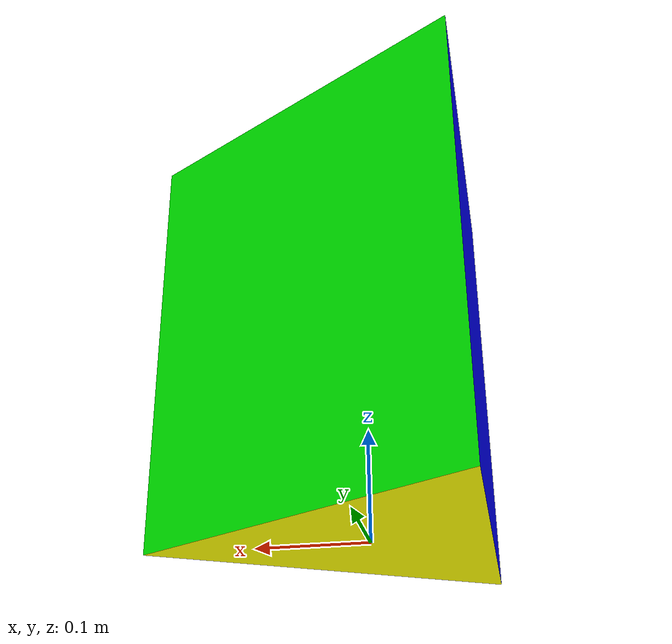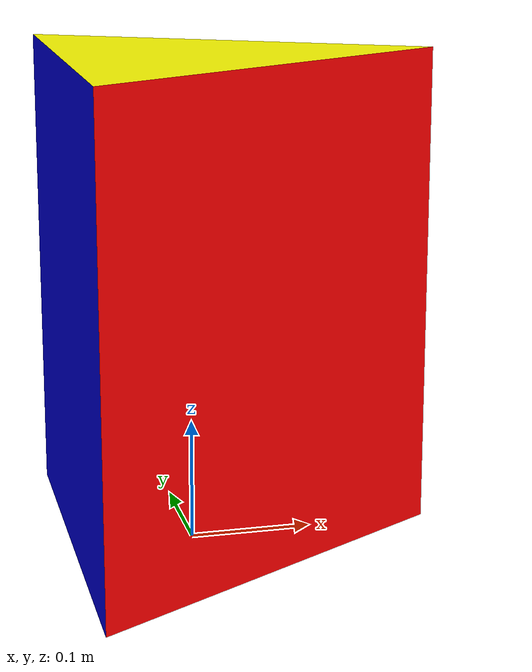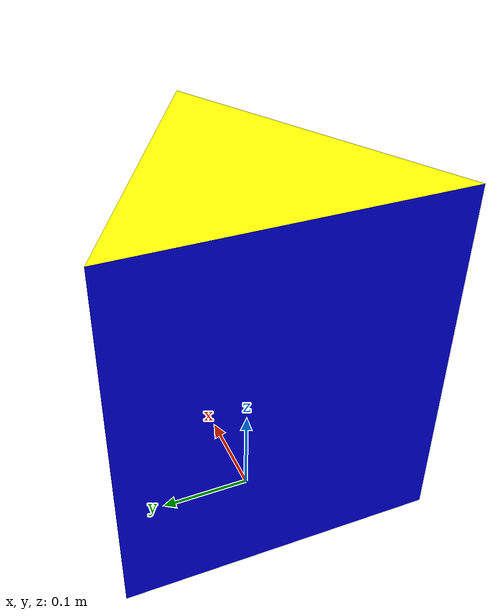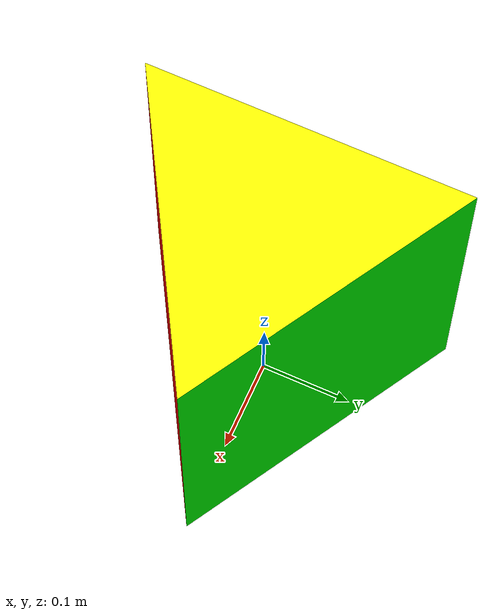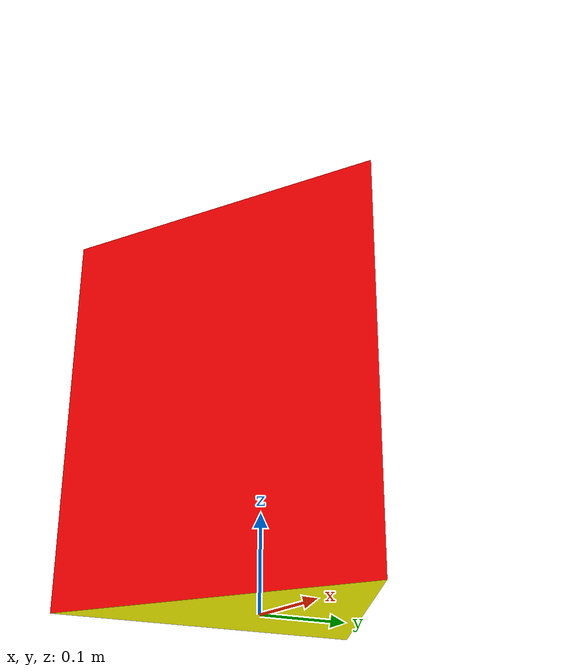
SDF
<?xml version="1.0"?>
<sdf version="1.6">
  <model name="3prism_basic">
    <static>true</static>
    <pose>0 0 0 0 0 0</pose>
    <link name="link1">

      <visual name="visual1">
        <geometry>
          <mesh>
            <uri>model://3prism_basic/meshes/3prism_basic.DAE</uri>
   	    <scale>1 1 1</scale>
          </mesh>
        </geometry>
      </visual>

    </link>
  </model>
</sdf>
